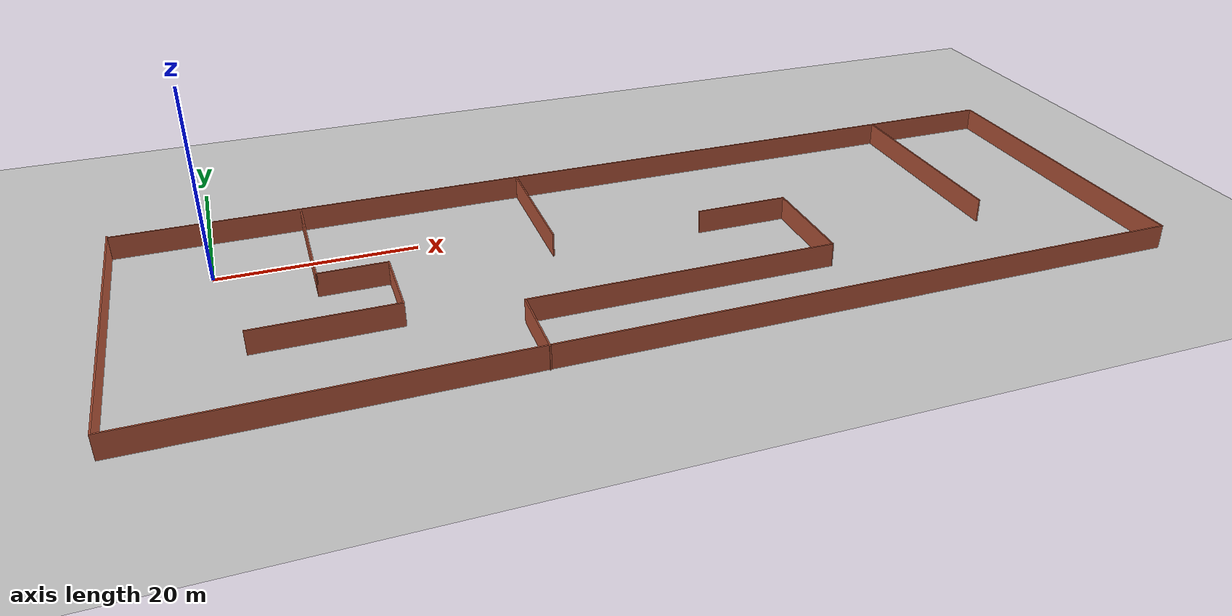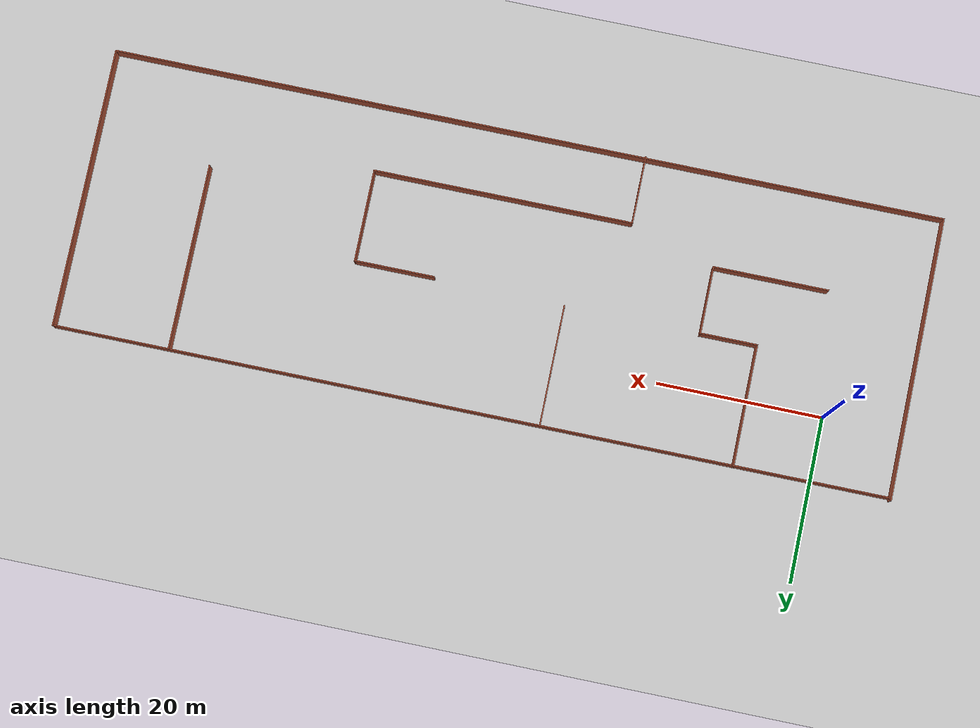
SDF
<sdf version="1.6">
 <world name="default">
  <light name="sun" type="directional">
   <pose>0 0 10 0 -0 0</pose>
   <diffuse>0.8 0.8 0.8 1</diffuse>
   <specular>0.2 0.2 0.2 1</specular>
   <attenuation>
    <range>1000</range>
    <constant>0.9</constant>
    <linear>0.01</linear>
    <quadratic>0.001</quadratic>
   </attenuation>
   <direction>-0.5 0.1 -0.9</direction>
  </light>
  <model name="ground_plane">
   <static>1</static>
   <link name="link">
    <collision name="collision">
     <geometry><plane><normal>0 0 1</normal><size>200 200</size></plane></geometry>
     <surface><friction><ode><mu>100</mu><mu2>50</mu2></ode></friction></surface>
    </collision>
    <visual name="visual">
     <cast_shadows>0</cast_shadows>
     <geometry><plane><normal>0 0 1</normal><size>200 100</size></plane></geometry>
     <material>
      <script><uri>file://media/materials/scripts/gazebo.material</uri><name>Gazebo/Grey</name></script>
     </material>
    </visual>
   </link>
  </model>
  <gravity>0 0 -9.8</gravity>
  <magnetic_field>6e-06 2.3e-05 -4.2e-05</magnetic_field>
  <atmosphere type="adiabatic"/>
  <physics name="default_physics" default="0" type="ode">
   <max_step_size>0.001</max_step_size>
   <real_time_factor>1</real_time_factor>
   <real_time_update_rate>1000</real_time_update_rate>
  </physics>
  <scene><ambient>0.4 0.4 0.4 1</ambient><background>0.7 0.7 0.7 1</background><shadows>1</shadows></scene>
  <spherical_coordinates>
   <surface_model>EARTH_WGS84</surface_model>
   <latitude_deg>0</latitude_deg>
   <longitude_deg>0</longitude_deg>
   <elevation>0</elevation>
   <heading_deg>0</heading_deg>
  </spherical_coordinates>
  <model name="s_test2">
   <pose>40.9653 -8.92394 0 0 -0 0</pose>
   <link name="Wall_0">
    <collision name="Wall_0_Collision">
     <geometry><box><size>34.25 0.15 2.5</size></box></geometry>
     <pose>0 0 1.25 0 -0 0</pose>
    </collision>
    <visual name="Wall_0_Visual">
     <pose>0 0 1.25 0 -0 0</pose>
     <geometry><box><size>34.25 0.15 2.5</size></box></geometry>
     <material>
      <script><uri>file://media/materials/scripts/gazebo.material</uri><name>Gazebo/Bricks</name></script>
      <ambient>1 1 1 1</ambient>
     </material>
     <meta><layer>0</layer></meta>
    </visual>
    <pose>-50.425 0.060409 0 0 0 -1.5708</pose>
   </link>
   <link name="Wall_1">
    <collision name="Wall_1_Collision">
     <geometry><box><size>101 0.15 2.5</size></box></geometry>
     <pose>0 0 1.25 0 -0 0</pose>
    </collision>
    <visual name="Wall_1_Visual">
     <pose>0 0 1.25 0 -0 0</pose>
     <geometry><box><size>101 0.15 2.5</size></box></geometry>
     <material>
      <script><uri>file://media/materials/scripts/gazebo.material</uri><name>Gazebo/Bricks</name></script>
      <ambient>1 1 1 1</ambient>
     </material>
     <meta><layer>0</layer></meta>
    </visual>
    <pose>0 -16.9896 0 0 -0 0</pose>
   </link>
   <link name="Wall_10">
    <collision name="Wall_10_Collision">
     <geometry><box><size>14.5 0.15 2.5</size></box></geometry>
     <pose>0 0 1.25 0 -0 0</pose>
    </collision>
    <visual name="Wall_10_Visual">
     <pose>0 0 1.25 0 -0 0</pose>
     <geometry><box><size>14.5 0.15 2.5</size></box></geometry>
     <material>
      <script><uri>file://media/materials/scripts/gazebo.material</uri><name>Gazebo/Bricks</name></script>
      <ambient>1 1 1 1</ambient>
     </material>
     <meta><layer>0</layer></meta>
    </visual>
    <pose>-8.34846 9.54248 0 0 -0 1.5708</pose>
   </link>
   <link name="Wall_12">
    <collision name="Wall_12_Collision">
     <geometry><box><size>8.25 0.15 2.5</size></box></geometry>
     <pose>0 0 1.25 0 -0 0</pose>
    </collision>
    <visual name="Wall_12_Visual">
     <pose>0 0 1.25 0 -0 0</pose>
     <geometry><box><size>8.25 0.15 2.5</size></box></geometry>
     <material>
      <script><uri>file://media/materials/scripts/gazebo.material</uri><name>Gazebo/Bricks</name></script>
      <ambient>1 1 1 1</ambient>
     </material>
     <meta><layer>0</layer></meta>
    </visual>
    <pose>-14.2672 -13.0604 0 0 -0 1.5708</pose>
   </link>
   <link name="Wall_13">
    <collision name="Wall_13_Collision">
     <geometry><box><size>31.5 0.15 2.5</size></box></geometry>
     <pose>0 0 1.25 0 -0 0</pose>
    </collision>
    <visual name="Wall_13_Visual">
     <pose>0 0 1.25 0 -0 0</pose>
     <geometry><box><size>31.5 0.15 2.5</size></box></geometry>
     <material>
      <script><uri>file://media/materials/scripts/gazebo.material</uri><name>Gazebo/Bricks</name></script>
      <ambient>1 1 1 1</ambient>
     </material>
     <meta><layer>0</layer></meta>
    </visual>
    <pose>1.40785 -9.01041 0 0 -0 0</pose>
   </link>
   <link name="Wall_14">
    <collision name="Wall_14_Collision">
     <geometry><box><size>11.25 0.15 2.5</size></box></geometry>
     <pose>0 0 1.25 0 -0 0</pose>
    </collision>
    <visual name="Wall_14_Visual">
     <pose>0 0 1.25 0 -0 0</pose>
     <geometry><box><size>11.25 0.15 2.5</size></box></geometry>
     <material>
      <script><uri>file://media/materials/scripts/gazebo.material</uri><name>Gazebo/Bricks</name></script>
      <ambient>1 1 1 1</ambient>
     </material>
     <meta><layer>0</layer></meta>
    </visual>
    <pose>17.0828 -3.46041 0 0 -0 1.5708</pose>
   </link>
   <link name="Wall_15">
    <collision name="Wall_15_Collision">
     <geometry><box><size>9.75 0.15 2.5</size></box></geometry>
     <pose>0 0 1.25 0 -0 0</pose>
    </collision>
    <visual name="Wall_15_Visual">
     <pose>0 0 1.25 0 -0 0</pose>
     <geometry><box><size>9.75 0.15 2.5</size></box></geometry>
     <material>
      <script><uri>file://media/materials/scripts/gazebo.material</uri><name>Gazebo/Bricks</name></script>
      <ambient>1 1 1 1</ambient>
     </material>
     <meta><layer>0</layer></meta>
    </visual>
    <pose>12.2828 2.08959 0 0 -0 3.14159</pose>
   </link>
   <link name="Wall_17">
    <collision name="Wall_17_Collision">
     <geometry><box><size>22.5 0.15 2.5</size></box></geometry>
     <pose>0 0 1.25 0 -0 0</pose>
    </collision>
    <visual name="Wall_17_Visual">
     <pose>0 0 1.25 0 -0 0</pose>
     <geometry><box><size>22.5 0.15 2.5</size></box></geometry>
     <material>
      <script><uri>file://media/materials/scripts/gazebo.material</uri><name>Gazebo/Bricks</name></script>
      <ambient>1 1 1 1</ambient>
     </material>
     <meta><layer>0</layer></meta>
    </visual>
    <pose>36.4184 5.61257 0 0 0 -1.5708</pose>
   </link>
   <link name="Wall_2">
    <collision name="Wall_2_Collision">
     <geometry><box><size>34 0.15 2.5</size></box></geometry>
     <pose>0 0 1.25 0 -0 0</pose>
    </collision>
    <visual name="Wall_2_Visual">
     <pose>0 0 1.25 0 -0 0</pose>
     <geometry><box><size>34 0.15 2.5</size></box></geometry>
     <material>
      <script><uri>file://media/materials/scripts/gazebo.material</uri><name>Gazebo/Bricks</name></script>
      <ambient>1 1 1 1</ambient>
     </material>
     <meta><layer>0</layer></meta>
    </visual>
    <pose>50.425 -0.064591 0 0 -0 1.5708</pose>
   </link>
   <link name="Wall_3">
    <collision name="Wall_3_Collision">
     <geometry><box><size>101 0.15 2.5</size></box></geometry>
     <pose>0 0 1.25 0 -0 0</pose>
    </collision>
    <visual name="Wall_3_Visual">
     <pose>0 0 1.25 0 -0 0</pose>
     <geometry><box><size>101 0.15 2.5</size></box></geometry>
     <material>
      <script><uri>file://media/materials/scripts/gazebo.material</uri><name>Gazebo/Bricks</name></script>
      <ambient>1 1 1 1</ambient>
     </material>
     <meta><layer>0</layer></meta>
    </visual>
    <pose>0 16.8604 0 0 -0 3.14159</pose>
   </link>
   <link name="Wall_5">
    <collision name="Wall_5_Collision">
     <geometry><box><size>14.75 0.15 2.5</size></box></geometry>
     <pose>0 0 1.25 0 -0 0</pose>
    </collision>
    <visual name="Wall_5_Visual">
     <pose>0 0 1.25 0 -0 0</pose>
     <geometry><box><size>14.75 0.15 2.5</size></box></geometry>
     <material>
      <script><uri>file://media/materials/scripts/gazebo.material</uri><name>Gazebo/Bricks</name></script>
      <ambient>1 1 1 1</ambient>
     </material>
     <meta><layer>0</layer></meta>
    </visual>
    <pose>-31.5928 9.59518 0 0 0 -1.5708</pose>
   </link>
   <link name="Wall_6">
    <collision name="Wall_6_Collision">
     <geometry><box><size>7 0.15 2.5</size></box></geometry>
     <pose>0 0 1.25 0 -0 0</pose>
    </collision>
    <visual name="Wall_6_Visual">
     <pose>0 0 1.25 0 -0 0</pose>
     <geometry><box><size>7 0.15 2.5</size></box></geometry>
     <material>
      <script><uri>file://media/materials/scripts/gazebo.material</uri><name>Gazebo/Bricks</name></script>
      <ambient>1 1 1 1</ambient>
     </material>
     <meta><layer>0</layer></meta>
    </visual>
    <pose>-28.1678 2.29518 0 0 -0 0</pose>
   </link>
   <link name="Wall_7">
    <collision name="Wall_7_Collision">
     <geometry><box><size>8.25 0.15 2.5</size></box></geometry>
     <pose>0 0 1.25 0 -0 0</pose>
    </collision>
    <visual name="Wall_7_Visual">
     <pose>0 0 1.25 0 -0 0</pose>
     <geometry><box><size>8.25 0.15 2.5</size></box></geometry>
     <material>
      <script><uri>file://media/materials/scripts/gazebo.material</uri><name>Gazebo/Bricks</name></script>
      <ambient>1 1 1 1</ambient>
     </material>
     <meta><layer>0</layer></meta>
    </visual>
    <pose>-24.7428 -1.75482 0 0 0 -1.5708</pose>
   </link>
   <link name="Wall_8">
    <collision name="Wall_8_Collision">
     <geometry><box><size>14 0.15 2.5</size></box></geometry>
     <pose>0 0 1.25 0 -0 0</pose>
    </collision>
    <visual name="Wall_8_Visual">
     <pose>0 0 1.25 0 -0 0</pose>
     <geometry><box><size>14 0.15 2.5</size></box></geometry>
     <material>
      <script><uri>file://media/materials/scripts/gazebo.material</uri><name>Gazebo/Bricks</name></script>
      <ambient>1 1 1 1</ambient>
     </material>
     <meta><layer>0</layer></meta>
    </visual>
    <pose>-31.6678 -5.80482 0 0 -0 3.14159</pose>
   </link>
   <static>1</static>
  </model>
  <plugin name="gazebo_connection_plugin" filename="libgazebo_connection_plugin.so"/>
 </world>
</sdf>
